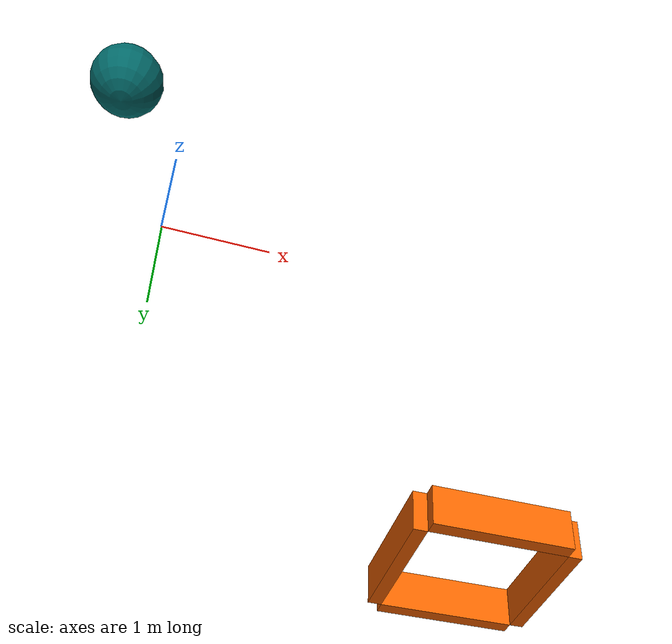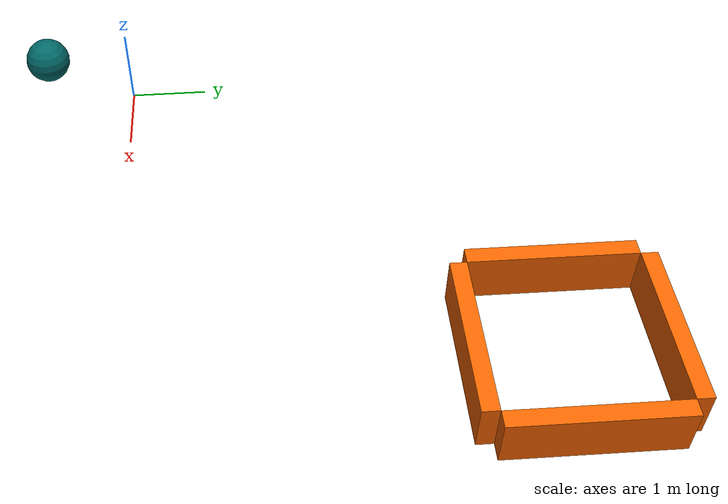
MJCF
<mujoco>
    <asset>
        <texture name="texsponge" type="2d" file="sponge.png"/>
        <material name="matsponge" texture="texsponge" specular="0.3"/>
    </asset>

    <option solver="CG" tolerance="1e-6"/>

    <size nconmax="500" njmax="5000" nstack="5000000"/>

    <worldbody>
        <body name="big_ball" pos="-0.5 -1.2 .3" euler="0 0 0">
            <joint type = "free"/>
            <geom type="sphere" size=".3" rgba="0 .4 .4 1"/>
        </body>

        <body name="container" pos="5 5 .3">
            <joint type = "free"/>
            <geom type="box" size="1 .1 .3" rgba="1 0.4 0 1" pos="0 1.1 0"/>
            <geom type="box" size=".1 1 .3" rgba="1 0.4 0 1" pos="1.1 0 0"/>
            <geom type="box" size=".1 1 .3" rgba="1 0.4 0 1" pos="-1.1 0 0"/>
            <geom type="box" size="1 .1 .3" rgba="1 0.4 0 1" pos="0 -1.1 0"/>
        </body>

    </worldbody>
</mujoco>
